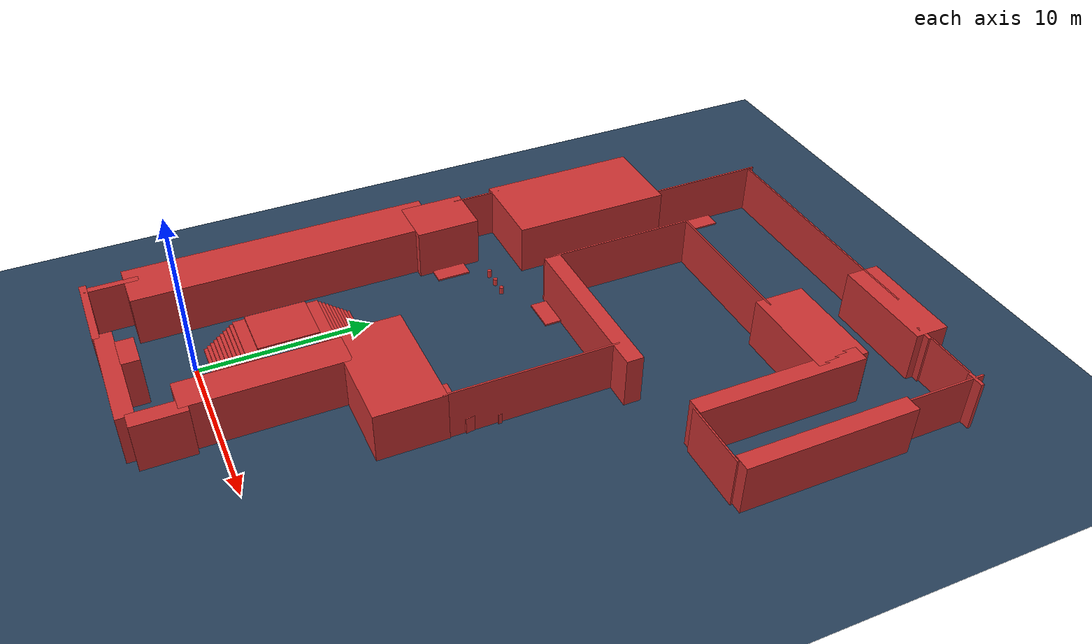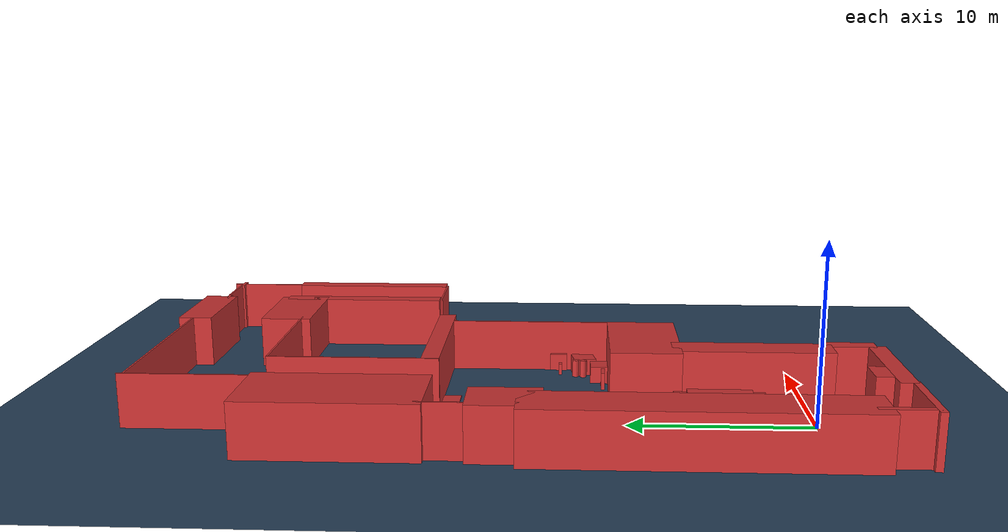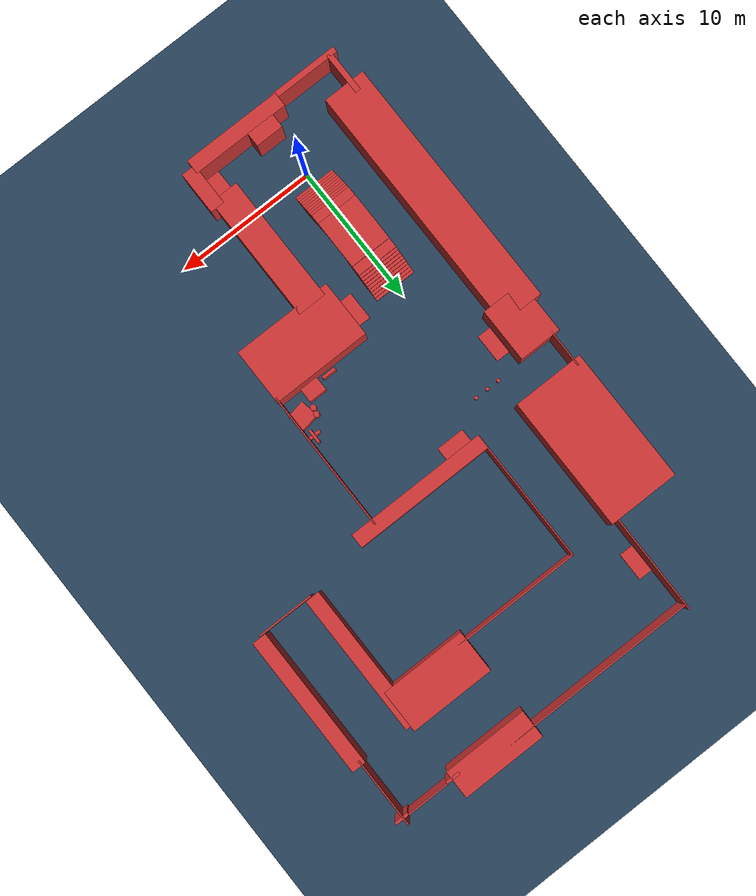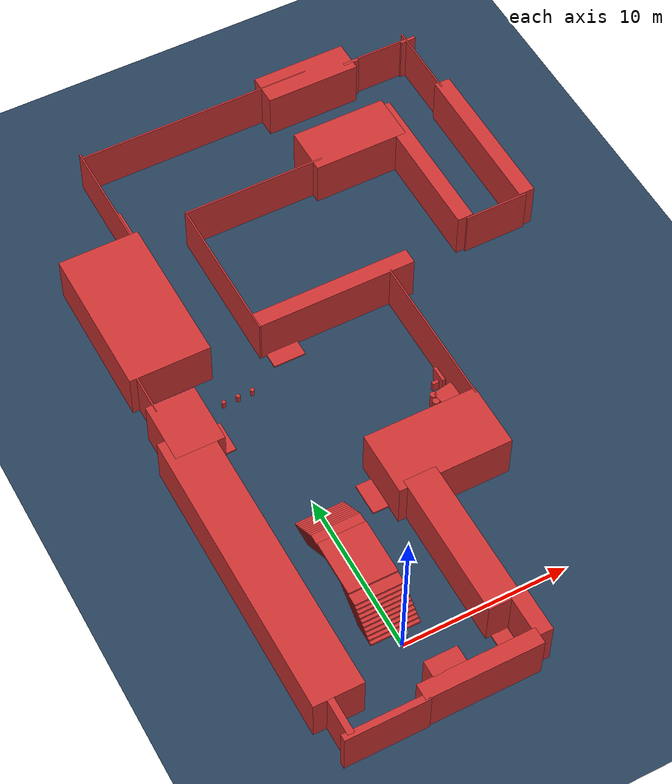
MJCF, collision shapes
<mujoco model="XXG scene">
  <include file="xxg.xml" />

  <statistic center="0 0 0.1" extent="0.8" />

  <visual>
    <headlight diffuse="0.6 0.6 0.6" ambient="0.3 0.3 0.3" specular="0 0 0" />
    <rgba haze="0.15 0.25 0.35 1" />
    <global azimuth="-130" elevation="-20" />
    <map znear="0.01" zfar="100"/>
  </visual>

  <asset>
    <texture type="skybox" builtin="gradient" rgb1="0.3 0.5 0.7" rgb2="0 0 0" width="512" height="3072" />
    <texture type="2d" name="groundplane" builtin="checker" mark="edge" rgb1="0.2 0.3 0.4" rgb2="0.1 0.2 0.3" markrgb="0.8 0.8 0.8" width="300" height="300" />
    <material name="groundplane" texture="groundplane" texuniform="true" texrepeat="5 5" reflectance="0.2" />
    <material name="platform" rgba="0.75294 0.75294 0.75294 1" specular="0.3" shininess="0.5" />
  </asset>
  <worldbody>
    <light pos="0 0 1.5" dir="0 0 -1" directional="true" />
    <geom name="floor" size="0 0 0.01" type="plane" material="groundplane" />
    <geom name="box_OBS1" pos="0.0 1.5 0.05" type="box" size="1.5 0.75 0.075" quat="1.0 0.0 0.0 0.0"  rgba="0.8 0.2 0.2 1"/>
    <geom name="box_OBS2" pos="0.0 1.7 0.2" type="box" size="1.5 0.75 0.075" quat="1.0 0.0 0.0 0.0"  rgba="0.8 0.2 0.2 1"/>
    <geom name="box_OBS3" pos="0.0 1.9 0.35" type="box" size="1.5 0.75 0.075" quat="1.0 0.0 0.0 0.0"  rgba="0.8 0.2 0.2 1"/>
    <geom name="box_OBS4" pos="0.0 2.1 0.5" type="box" size="1.5 0.75 0.075" quat="1.0 0.0 0.0 0.0"  rgba="0.8 0.2 0.2 1"/>
    <geom name="box_OBS5" pos="0.0 2.3 0.65" type="box" size="1.5 0.75 0.075" quat="1.0 0.0 0.0 0.0"  rgba="0.8 0.2 0.2 1"/>
    <geom name="box_OBS6" pos="0.0 2.5 0.8" type="box" size="1.5 0.75 0.075" quat="1.0 0.0 0.0 0.0"  rgba="0.8 0.2 0.2 1"/>
    <geom name="box_OBS7" pos="0.0 2.7 0.95" type="box" size="1.5 0.75 0.075" quat="1.0 0.0 0.0 0.0"  rgba="0.8 0.2 0.2 1"/>
    <geom name="box_OBS8" pos="0.0 2.9 1.1" type="box" size="1.5 0.75 0.075" quat="1.0 0.0 0.0 0.0"  rgba="0.8 0.2 0.2 1"/>
    <geom name="box_OBS9" pos="0.0 3.1 1.25" type="box" size="1.5 0.75 0.075" quat="1.0 0.0 0.0 0.0"  rgba="0.8 0.2 0.2 1"/>
    <geom name="box_OBS10" pos="0.0 3.3 1.4" type="box" size="1.5 0.75 0.075" quat="1.0 0.0 0.0 0.0"  rgba="0.8 0.2 0.2 1"/>
    <geom name="box2_OBS1" pos="0.0 8.5 0.05" type="box" size="1.5 0.75 0.075" quat="1.0 0.0 0.0 0.0"  rgba="0.8 0.2 0.2 1"/>
    <geom name="box2_OBS2" pos="0.0 8.3 0.2" type="box" size="1.5 0.75 0.075" quat="1.0 0.0 0.0 0.0"  rgba="0.8 0.2 0.2 1"/>
    <geom name="box2_OBS3" pos="0.0 8.1 0.35" type="box" size="1.5 0.75 0.075" quat="1.0 0.0 0.0 0.0"  rgba="0.8 0.2 0.2 1"/>
    <geom name="box2_OBS4" pos="0.0 7.9 0.5" type="box" size="1.5 0.75 0.075" quat="1.0 0.0 0.0 0.0"  rgba="0.8 0.2 0.2 1"/>
    <geom name="box2_OBS5" pos="0.0 7.7 0.65" type="box" size="1.5 0.75 0.075" quat="1.0 0.0 0.0 0.0"  rgba="0.8 0.2 0.2 1"/>
    <geom name="box2_OBS6" pos="0.0 7.5 0.8" type="box" size="1.5 0.75 0.075" quat="1.0 0.0 0.0 0.0"  rgba="0.8 0.2 0.2 1"/>
    <geom name="box2_OBS7" pos="0.0 7.3 0.95" type="box" size="1.5 0.75 0.075" quat="1.0 0.0 0.0 0.0"  rgba="0.8 0.2 0.2 1"/>
    <geom name="box2_OBS8" pos="0.0 7.1 1.1" type="box" size="1.5 0.75 0.075" quat="1.0 0.0 0.0 0.0"  rgba="0.8 0.2 0.2 1"/>
    <geom name="box2_OBS9" pos="0.0 6.9 1.25" type="box" size="1.5 0.75 0.075" quat="1.0 0.0 0.0 0.0" rgba="0.8 0.2 0.2 1" />
    <geom name="box2_OBS10" pos="0.0 6.7 1.4" type="box" size="1.5 0.75 0.075" quat="1.0 0.0 0.0 0.0"  rgba="0.8 0.2 0.2 1"/>
    <geom name="box2_OBS11" pos="0.0 5.0 1.55" type="box" size="1.5 1.75 0.075" quat="1.0 0.0 0.0 0.0"  rgba="0.8 0.2 0.2 1"/>
    <geom name="Box0" type="box" size="2.5 0.2 1.5" pos="-3.6 -4.58 1.5" euler="0.0 0.0 0.0" rgba="0.8 0.2 0.2 1"/>
    <geom name="Box1" type="box" size="3.5 0.5 1.5" pos="2.09 -4.21 1.5" euler="0.0 0.0 0.0" rgba="0.8 0.2 0.2 1"/>
    <geom name="Box2" type="box" size="1.5 0.5 1.5" pos="5.89 -2.71 1.5" euler="0.0 0.0 -1.570796" rgba="0.8 0.2 0.2 1"/>
    <geom name="Box3" type="box" size="4.5 1.0 1.5" pos="5.02 2.79 1.5" euler="0.0 0.0 -1.570796" rgba="0.8 0.2 0.2 1"/>
    <geom name="Box4" type="box" size="2.0 3.5 1.5" pos="7.02 8.79 1.5" euler="0.0 0.0 -1.570796" rgba="0.8 0.2 0.2 1"/>
    <geom name="Box5" type="box" size="5.0 0.05 1.5" pos="10.41 15.49 1.5" euler="0.0 0.0 -1.570796" rgba="0.8 0.2 0.2 1"/>
    <geom name="Box6" type="box" size="5.0 0.5 1.5" pos="6.96 20.6 1.5" euler="0.0 0.0 -3.141593" rgba="0.8 0.2 0.2 1"/>
    <geom name="Box7" type="box" size="1.5 0.2 1.5" pos="-5.6 -3.08 1.5" euler="0.0 0.0 1.570796" rgba="0.8 0.2 0.2 1"/>
    <geom name="Box8" type="box" size="9.0 1.5 1.5" pos="-5.1 6.61 1.5" euler="0.0 0.0 1.570796" rgba="0.8 0.2 0.2 1"/>
    <geom name="Box9" type="box" size="1.9 1.5 1.5" pos="-4.6 16.19 1.5" euler="0.0 0.0 1.570796" rgba="0.8 0.2 0.2 1"/>
    <geom name="Box10" type="box" size="4.75 2.5 1.5" pos="-3.6 24.85 1.5" euler="0.0 0.0 1.570796" rgba="0.8 0.2 0.2 1"/>
    <geom name="Box11" type="box" size="3.5 0.05 1.5" pos="-1.58 33.09 1.5" euler="0.0 0.0 1.570796" rgba="0.8 0.2 0.2 1"/>
    <geom name="Box12" type="box" size="4.75 0.05 1.5" pos="1.99 24.85 1.5" euler="0.0 0.0 1.570796" rgba="0.8 0.2 0.2 1"/>
    <geom name="Box13" type="box" size="7.5 0.05 1.5" pos="5.91 36.24 1.5" euler="0.0 0.0 3.141593" rgba="0.8 0.2 0.2 1"/>
    <geom name="Box14" type="box" size="3.0 1.0 1.5" pos="13.37 36.1 1.5" euler="0.0 0.0 3.141593" rgba="0.8 0.2 0.2 1"/>
    <geom name="Box15" type="box" size="3.0 1.5 1.5" pos="13.37 30.46 1.5" euler="0.0 0.0 3.141593" rgba="0.8 0.2 0.2 1"/>
    <geom name="Box16" type="box" size="4.5 0.05 1.5" pos="6.48 29.54 1.5" euler="0.0 0.0 3.141593" rgba="0.8 0.2 0.2 1"/>
    <geom name="Box17" type="box" size="1.5 0.05 1.5" pos="18.26 35.71 1.5" euler="0.0 0.0 3.141593" rgba="0.8 0.2 0.2 1"/>
    <geom name="Box18" type="box" size="0.5 0.1 1.5" pos="16.26 35.63 1.5" euler="0.0 0.0 3.141593" rgba="0.8 0.2 0.2 1"/>
    <geom name="Box19" type="box" size="0.5 0.1 1.5" pos="20.26 35.63 1.5" euler="0.0 0.0 3.141593" rgba="0.8 0.2 0.2 1"/>
    <geom name="Box20" type="box" size="2.5 0.05 1.5" pos="20.16 33.71 1.5" euler="0.0 0.0 -1.570796" rgba="0.8 0.2 0.2 1"/>
    <geom name="Box21" type="box" size="5.0 0.5 1.5" pos="20.38 26.58 1.5" euler="0.0 0.0 -1.570796" rgba="0.8 0.2 0.2 1"/>
    <geom name="Box22" type="box" size="5.0 0.5 1.5" pos="16.22 26.58 1.5" euler="0.0 0.0 -1.570796" rgba="0.8 0.2 0.2 1"/>
    <geom name="Box23" type="box" size="2.0 0.05 1.5" pos="18.26 21.48 1.5" euler="0.0 0.0 -3.141593" rgba="0.8 0.2 0.2 1"/>
    <geom name="Box24" type="box" size="1.0 0.5 1.5" pos="0.55 -3.24 1.5" euler="0.0 0.0 0.0" rgba="0.8 0.2 0.2 1"/>
    <geom name="Box25" type="box" size="1.0 0.5 0.05" pos="4.83 -2.74 0.09" euler="0.0 0.0 -1.570796" rgba="0.8 0.2 0.2 1"/>
    <geom name="Box26" type="box" size="1.0 0.5 0.05" pos="-2.63 16.08 0.1" euler="0.0 0.0 -1.570796" rgba="0.8 0.2 0.2 1"/>
    <geom name="Box27" type="box" size="1.0 0.5 0.05" pos="3.35 19.62 0.1" euler="0.0 0.0 0.0" rgba="0.8 0.2 0.2 1"/>
    <geom name="Box28" type="box" size="1.0 0.5 0.05" pos="-1.05 32.59 0.1" euler="0.0 0.0 -1.570796" rgba="0.8 0.2 0.2 1"/>
    <geom name="Box29" type="box" size="0.1 0.5 0.5" pos="6.82 11.09 0.5" euler="0.0 0.0 -1.570796" rgba="0.8 0.2 0.2 1"/>
    <geom name="Box30" type="box" size="0.5 0.65 0.5" pos="8.24 11.3 0.5" euler="0.0 0.0 -1.570796" rgba="0.8 0.2 0.2 1"/>
    <geom name="Box31" type="box" size="0.65 0.65 0.5" pos="9.8 12.2 0.5" euler="0.0 0.0 1.745329" rgba="0.8 0.2 0.2 1"/>
    <geom name="Box32" type="box" size="0.1 0.5 0.5" pos="10.02 13.59 0.1" euler="-1.570796 1.570796 3.141593" rgba="0.8 0.2 0.2 1"/>
    <geom name="Box33" type="box" size="0.1 0.5 0.5" pos="10.02 13.69 0.6" euler="-1.570796 0.0 3.141593" rgba="0.8 0.2 0.2 1"/>
    <geom name="Cylinder34"  type="cylinder" size="0.2 0.5" pos="8.95 12.2 0.5" rgba="0.8 0.2 0.2 1"/>
    <geom name="Cylinder35"  type="cylinder" size="0.2 0.5" pos="9.05 12.65 0.5" rgba="0.8 0.2 0.2 1"/>
    <geom name="Box36" type="box" size="1.5 0.05 1.5" pos="-5.63 19.05 1.5" euler="0.0 0.0 1.570796" rgba="0.8 0.2 0.2 1"/>
    <geom name="Cylinder37"  type="cylinder" size="0.125 0.22" pos="0.41 18.09 0.22" rgba="0.8 0.2 0.2 1"/>
    <geom name="Cylinder38"  type="cylinder" size="0.125 0.22" pos="-0.49 18.09 0.22" rgba="0.8 0.2 0.2 1"/>
    <geom name="Cylinder39"  type="cylinder" size="0.125 0.22" pos="-1.39 18.09 0.22" rgba="0.8 0.2 0.2 1"/>
    <geom name="Box40" type="box" size="1.0 0.5 0.05" pos="3.04 8.82 0.1" euler="0.0 0.0 -1.570796" rgba="0.8 0.2 0.2 1"/>
  </worldbody>
</mujoco>

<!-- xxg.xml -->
<mujoco model="DOG">
  <compiler angle="radian" meshdir="assets/"/>

  <asset>
    <mesh name="BASE_LINK" file="BASE_LINK.STL"/>
    <mesh name="FBL_ABAD_LINK" file="FBL_ABAD_LINK.STL"/>
    <mesh name="FBL_HIP_LINK" file="FBL_HIP_LINK.STL"/>
    <mesh name="FBL_KNEE_LINK" file="FBL_KNEE_LINK.STL"/>
    <mesh name="FBL_FOOT_LINK" file="FBL_FOOT_LINK.STL"/>
    <mesh name="FAR_ABAD_LINK" file="FAR_ABAD_LINK.STL"/>
    <mesh name="FAR_HIP_LINK" file="FAR_HIP_LINK.STL"/>
    <mesh name="FAR_KNEE_LINK" file="FAR_KNEE_LINK.STL"/>
    <mesh name="FAR_FOOT_LINK" file="FAR_FOOT_LINK.STL"/>
    <mesh name="RAR_ABAD_LINK" file="RAR_ABAD_LINK.STL"/>
    <mesh name="RAR_HIP_LINK" file="RAR_HIP_LINK.STL"/>
    <mesh name="RAR_KNEE_LINK" file="RAR_KNEE_LINK.STL"/>
    <mesh name="RAR_FOOT_LINK" file="RAR_FOOT_LINK.STL"/>
    <mesh name="RBL_ABAD_LINK" file="RBL_ABAD_LINK.STL"/>
    <mesh name="RBL_HIP_LINK" file="RBL_HIP_LINK.STL"/>
    <mesh name="RBL_KNEE_LINK" file="RBL_KNEE_LINK.STL"/>
    <mesh name="RBL_FOOT_LINK" file="RBL_FOOT_LINK.STL"/>
    <mesh name="HEAD1_LINK" file="HEAD1_LINK.STL"/>
    <mesh name="HEAD2_LINK" file="HEAD2_LINK.STL"/>
  </asset>

  <worldbody>
    <body name="BASE_LINK" pos="0 0 1.0">
      <inertial pos="1.8341473e-02 -1.9475667e-04 1.6646741e-02" quat="-0 0 0 1" mass="5.6608325" diaginertia="0.039340224 8.8059075e-02 7.6312096e-02"/>
      <freejoint />
      <site name="imu" pos="0.0 0 0.0" />
    <!-- add livox_imu -->
    <site name="livox_imu" pos="0.18 0.0 0.3" quat="1.0 0.0 0.0 0.0"/>
    <!-- add camera imu -->
    <site name="camera_imu" pos="0.18 0.0 0.3" quat="1.0 0.0 0.0 0.0"/>

    <geom type="mesh" contype="0" conaffinity="0" group="1" density="0" rgba="0.75294 0.75294 0.75294 1.0" mesh="BASE_LINK"/>
    <geom size="0.2 0.075 0.055" type="box" rgba="0.75294 0.75294 0.75294 0.0"/>
    <geom pos="0.1775 0 0.1164" quat="0.965249 0 0.26133 0" type="mesh" contype="0" conaffinity="0" group="1" density="0" rgba="0.75294 0.75294 0.75294 1.0" mesh="HEAD1_LINK"/>
    <geom pos="0.1775 0 0.1164" quat="0.965249 0 0.26133 0" type="mesh" contype="0" conaffinity="0" group="1" density="0" rgba="0.75294 0.75294 0.75294 1.0" mesh="HEAD2_LINK"/>
    <geom size="0.05 0.1 0.06" pos="0.204181 0 0.181884" quat="0.965249 0 0.26133 0" type="box" rgba="0.75294 0.75294 0.75294 0.0"/>
    <geom size="0.035 0.05 0.04" pos="0.27432 0 0.123528" quat="0.965249 0 0.26133 0" type="box" rgba="0.75294 0.75294 0.75294 0.0"/>
    <body name="FBL_ABAD_LINK" pos="0.1305 0.0377 0">
      <inertial pos="-0.0258732 0.00474653 0" quat="0.446156 0.446156 0.548585 0.548585" mass="0.29007" diaginertia="0.000234429 0.000228281 4.61129e-05"/>
      <joint name="FBL_ABAD_JOINT" pos="0 0 0" axis="1 0 0" range="-0.4887 0.4887" actuatorfrcrange="-20 20"/>
      <geom type="mesh" contype="0" conaffinity="0" group="1" density="0" rgba="0.75294 0.75294 0.75294 1.0" mesh="FBL_ABAD_LINK"/>
      <body name="FBL_HIP_LINK">
        <inertial pos="0 0.0475203 -0.0615104" quat="0.992663 0.120643 7.95638e-06 -0.00808508" mass="0.698577" diaginertia="0.00315469 0.00310141 0.000383698"/>
        <joint name="FBL_HIP_JOINT" pos="0 0 0" axis="0 1 0" range="-2.967 2.967" actuatorfrcrange="-20 20"/>
        <geom type="mesh" contype="0" conaffinity="0" group="1" density="0" rgba="0.75294 0.75294 0.75294 1.0" mesh="FBL_HIP_LINK"/>
        <geom size="0.025 0.015 0.03" pos="-0.01 0.085 -0.06" type="box" rgba="0.75294 0.75294 0.75294 1.0"/>
        <body name="FBL_KNEE_LINK" pos="0 0.08786 -0.1307">
          <inertial pos="0.00368489 0.0063771 -0.0635258" quat="0.608469 0.0177668 -0.0332576 0.792681" mass="0.288584" diaginertia="0.00161384 0.00159203 5.37708e-05"/>
          <joint name="FBL_KNEE_JOINT" pos="0 0 0" axis="0 1 0" range="-2.723 2.702" actuatorfrcrange="-20 20"/>
          <geom type="mesh" contype="0" conaffinity="0" group="1" density="0" rgba="0.49804 0.49804 0.49804 1.0" mesh="FBL_KNEE_LINK"/>
          <geom size="0.015 0.01 0.045" pos="0 0 -0.05" quat="0.994493 0 0.104807 0" type="box" rgba="0.49804 0.49804 0.49804 1.0"/>
          <geom pos="0 0 -0.1425" type="mesh" contype="0" conaffinity="0" group="1" density="0" rgba="0.75294 0.75294 0.75294 1.0" mesh="FBL_FOOT_LINK"/>
          <geom size="0.03" pos="0 0 -0.1425" quat="0.707388 0.706825 0 0" rgba="0.75294 0.75294 0.75294 1.0"/>
        </body>
      </body>
    </body>
    <body name="FAR_ABAD_LINK" pos="0.1305 -0.0377 0">
      <inertial pos="-0.0258732 -0.00474653 0" quat="0.548585 0.548585 0.446156 0.446156" mass="0.29007" diaginertia="0.000234429 0.000228281 4.61129e-05"/>
      <joint name="FAR_ABAD_JOINT" pos="0 0 0" axis="1 0 0" range="-0.4887 0.4887" actuatorfrcrange="-20 20"/>
      <geom type="mesh" contype="0" conaffinity="0" group="1" density="0" rgba="0.75294 0.75294 0.75294 1.0" mesh="FAR_ABAD_LINK"/>
      <body name="FAR_HIP_LINK">
        <inertial pos="0 -0.0475203 -0.0615104" quat="0.992663 -0.120643 7.95638e-06 0.00808508" mass="0.698577" diaginertia="0.00315469 0.00310141 0.000383698"/>
        <joint name="FAR_HIP_JOINT" pos="0 0 0" axis="0 1 0" range="-2.967 2.967" actuatorfrcrange="-20 20"/>
        <geom type="mesh" contype="0" conaffinity="0" group="1" density="0" rgba="0.75294 0.75294 0.75294 1.0" mesh="FAR_HIP_LINK"/>
        <geom size="0.025 0.015 0.03" pos="-0.01 -0.085 -0.06" type="box" rgba="0.75294 0.75294 0.75294 1.0"/>
        <body name="FAR_KNEE_LINK" pos="0 -0.08786 -0.1307">
          <inertial pos="0.00368489 -0.0063771 -0.0635258" quat="0.792681 -0.0332576 0.0177668 0.608469" mass="0.288584" diaginertia="0.00161384 0.00159203 5.37708e-05"/>
          <joint name="FAR_KNEE_JOINT" pos="0 0 0" axis="0 1 0" range="-2.723 2.702" actuatorfrcrange="-20 20"/>
          <geom type="mesh" contype="0" conaffinity="0" group="1" density="0" rgba="0.49804 0.49804 0.49804 1.0" mesh="FAR_KNEE_LINK"/>
          <geom size="0.015 0.01 0.045" pos="0 0 -0.05" quat="0.994493 0 0.104807 0" type="box" rgba="0.49804 0.49804 0.49804 1.0"/>
          <geom pos="0 0 -0.1425" type="mesh" contype="0" conaffinity="0" group="1" density="0" rgba="0.75294 0.75294 0.75294 1.0" mesh="FAR_FOOT_LINK"/>
          <geom size="0.03" pos="0 0 -0.1425" quat="0.707388 0.706825 0 0" rgba="0.75294 0.75294 0.75294 1.0"/>
        </body>
      </body>
    </body>
    <body name="RAR_ABAD_LINK" pos="-0.1305 -0.0377 0">
      <inertial pos="0.0258732 -0.00474653 0" quat="0.446156 0.446156 0.548585 0.548585" mass="0.29007" diaginertia="0.000234429 0.000228281 4.61129e-05"/>
      <joint name="RAR_ABAD_JOINT" pos="0 0 0" axis="1 0 0" range="-0.4887 0.4887" actuatorfrcrange="-20 20"/>
      <geom type="mesh" contype="0" conaffinity="0" group="1" density="0" rgba="0.75294 0.75294 0.75294 1.0" mesh="RAR_ABAD_LINK"/>
      <body name="RAR_HIP_LINK">
        <inertial pos="0 -0.0475203 -0.0615104" quat="0.992663 -0.120643 7.95638e-06 0.00808508" mass="0.698577" diaginertia="0.00315469 0.00310141 0.000383698"/>
        <joint name="RAR_HIP_JOINT" pos="0 0 0" axis="0 1 0" range="-2.967 2.967" actuatorfrcrange="-20 20"/>
        <geom type="mesh" contype="0" conaffinity="0" group="1" density="0" rgba="0.75294 0.75294 0.75294 1.0" mesh="RAR_HIP_LINK"/>
        <geom size="0.025 0.015 0.03" pos="0 -0.085 -0.06" type="box" rgba="0.75294 0.75294 0.75294 1.0"/>
        <body name="RAR_KNEE_LINK" pos="0 -0.08786 -0.1307">
          <inertial pos="0.00368489 -0.0063771 -0.0634925" quat="0.792566 -0.0333078 0.0177921 0.608615" mass="0.288584" diaginertia="0.0016124 0.00159058 5.37526e-05"/>
          <joint name="RAR_KNEE_JOINT" pos="0 0 0" axis="0 1 0" range="-2.723 2.702" actuatorfrcrange="-20 20"/>
          <geom type="mesh" contype="0" conaffinity="0" group="1" density="0" rgba="0.49804 0.49804 0.49804 1.0" mesh="RAR_KNEE_LINK"/>
          <geom size="0.015 0.01 0.045" pos="-0.01 0 -0.04" quat="0.930508 0 0.366273 0" type="box" rgba="0.49804 0.49804 0.49804 1.0"/>
          <geom pos="0 0 -0.1357" quat="1 0 0 0" type="mesh" contype="0" conaffinity="0" group="1" density="0" rgba="0.75294 0.75294 0.75294 1.0" mesh="RAR_FOOT_LINK"/>
          <geom size="0.03" pos="0 0 -0.1357" quat="0.707388 0.706825 0 0" rgba="0.75294 0.75294 0.75294 1.0"/>
        </body>
      </body>
    </body>
    <body name="RBL_ABAD_LINK" pos="-0.1305 0.0377 0">
      <inertial pos="0.0258732 0.00474653 0" quat="0.548585 0.548585 0.446156 0.446156" mass="0.29007" diaginertia="0.000234429 0.000228281 4.61129e-05"/>
      <joint name="RBL_ABAD_JOINT" pos="0 0 0" axis="1 0 0" range="-0.4887 0.4887" actuatorfrcrange="-20 20"/>
      <geom type="mesh" contype="0" conaffinity="0" group="1" density="0" rgba="0.75294 0.75294 0.75294 1.0" mesh="RBL_ABAD_LINK"/>
      <body name="RBL_HIP_LINK">
        <inertial pos="0 0.0475203 -0.0615104" quat="0.992663 0.120643 7.95638e-06 -0.00808508" mass="0.698577" diaginertia="0.00315469 0.00310141 0.000383698"/>
        <joint name="RBL_HIP_JOINT" pos="0 0 0" axis="0 1 0" range="-2.967 2.967" actuatorfrcrange="-20 20"/>
        <geom type="mesh" contype="0" conaffinity="0" group="1" density="0" rgba="0.75294 0.75294 0.75294 1.0" mesh="RBL_HIP_LINK"/>
        <geom size="0.025 0.015 0.03" pos="0 0.085 -0.06" type="box" rgba="0.75294 0.75294 0.75294 1.0"/>
        <body name="RBL_KNEE_LINK" pos="0 0.08786 -0.1307">
          <inertial pos="0.00368489 0.0063771 -0.0634925" quat="0.608615 0.0177921 -0.0333078 0.792566" mass="0.288584" diaginertia="0.0016124 0.00159058 5.37526e-05"/>
          <joint name="RBL_KNEE_JOINT" pos="0 0 0" axis="0 1 0" range="-2.723 2.702" actuatorfrcrange="-20 20"/>
          <geom type="mesh" contype="0" conaffinity="0" group="1" density="0" rgba="0.49804 0.49804 0.49804 1.0" mesh="RBL_KNEE_LINK"/>
          <geom size="0.015 0.01 0.045" pos="-0.01 0 -0.04" quat="0.930508 0 0.366273 0" type="box" rgba="0.49804 0.49804 0.49804 1.0"/>
          <geom pos="0 0 -0.1357" quat="1 0 0 0" type="mesh" contype="0" conaffinity="0" group="1" density="0" rgba="0.75294 0.75294 0.75294 1.0" mesh="RBL_FOOT_LINK"/>
          <geom size="0.03" pos="0 0 -0.1357" quat="0.707388 0.706825 0 0" rgba="0.75294 0.75294 0.75294 1.0"/>
        </body>
      </body>
    </body>
  </body>
  </worldbody>
    <actuator>
        <motor name="FR_ABAD_LINK" joint="FAR_ABAD_JOINT" />
        <motor name="FR_HIP_LINK" joint="FAR_HIP_JOINT" />
        <motor name="FR_KNEE_LINK" joint="FAR_KNEE_JOINT" />
        <motor name="FL_ABAD_LINK" joint="FBL_ABAD_JOINT" />
        <motor name="FL_HIP_LINK" joint="FBL_HIP_JOINT" />
        <motor name="FL_KNEE_LINK" joint="FBL_KNEE_JOINT" />
        <motor name="RR_ABAD_LINK" joint="RAR_ABAD_JOINT" />
        <motor name="RR_HIP_LINK" joint="RAR_HIP_JOINT" />
        <motor name="RR_KNEE_LINK" joint="RAR_KNEE_JOINT" />
        <motor name="RL_ABAD_LINK" joint="RBL_ABAD_JOINT" />
        <motor name="RL_HIP_LINK" joint="RBL_HIP_JOINT" />
        <motor name="RL_KNEE_LINK" joint="RBL_KNEE_JOINT" />
    </actuator>

    <sensor>
        <jointpos name="FR_hip_pos" joint="FAR_ABAD_JOINT" />
        <jointpos name="FR_thigh_pos" joint="FAR_HIP_JOINT" />
        <jointpos name="FR_calf_pos" joint="FAR_KNEE_JOINT" />
        <jointpos name="FL_hip_pos" joint="FBL_ABAD_JOINT" />
        <jointpos name="FL_thigh_pos" joint="FBL_HIP_JOINT" />
        <jointpos name="FL_calf_pos" joint="FBL_KNEE_JOINT" />
        <jointpos name="RR_hip_pos" joint="RAR_ABAD_JOINT" />
        <jointpos name="RR_thigh_pos" joint="RAR_HIP_JOINT" />
        <jointpos name="RR_calf_pos" joint="RAR_KNEE_JOINT" />
        <jointpos name="RL_hip_pos" joint="RBL_ABAD_JOINT" />
        <jointpos name="RL_thigh_pos" joint="RBL_HIP_JOINT" />
        <jointpos name="RL_calf_pos" joint="RBL_KNEE_JOINT" />

        <jointvel name="FR_hip_vel" joint="FAR_ABAD_JOINT" />
        <jointvel name="FR_thigh_vel" joint="FAR_HIP_JOINT" />
        <jointvel name="FR_calf_vel" joint="FAR_KNEE_JOINT" />
        <jointvel name="FL_hip_vel" joint="FBL_ABAD_JOINT" />
        <jointvel name="FL_thigh_vel" joint="FBL_HIP_JOINT" />
        <jointvel name="FL_calf_vel" joint="FBL_KNEE_JOINT" />
        <jointvel name="RR_hip_vel" joint="RAR_ABAD_JOINT" />
        <jointvel name="RR_thigh_vel" joint="RAR_HIP_JOINT" />
        <jointvel name="RR_calf_vel" joint="RAR_KNEE_JOINT" />
        <jointvel name="RL_hip_vel" joint="RBL_ABAD_JOINT" />
        <jointvel name="RL_thigh_vel" joint="RBL_HIP_JOINT" />
        <jointvel name="RL_calf_vel" joint="RBL_KNEE_JOINT" />

        <jointactuatorfrc name="FR_hip_torque" joint="FAR_ABAD_JOINT" noise="0.01" />
        <jointactuatorfrc name="FR_thigh_torque" joint="FAR_HIP_JOINT" noise="0.01" />
        <jointactuatorfrc name="FR_calf_torque" joint="FAR_KNEE_JOINT" noise="0.01" />
        <jointactuatorfrc name="FL_hip_torque" joint="FBL_ABAD_JOINT" noise="0.01" />
        <jointactuatorfrc name="FL_thigh_torque" joint="FBL_HIP_JOINT" noise="0.01" />
        <jointactuatorfrc name="FL_calf_torque" joint="FBL_KNEE_JOINT" noise="0.01" />
        <jointactuatorfrc name="RR_hip_torque" joint="RAR_ABAD_JOINT" noise="0.01" />
        <jointactuatorfrc name="RR_thigh_torque" joint="RAR_HIP_JOINT" noise="0.01" />
        <jointactuatorfrc name="RR_calf_torque" joint="RAR_KNEE_JOINT" noise="0.01" />
        <jointactuatorfrc name="RL_hip_torque" joint="RBL_ABAD_JOINT" noise="0.01" />
        <jointactuatorfrc name="RL_thigh_torque" joint="RBL_HIP_JOINT" noise="0.01" />
        <jointactuatorfrc name="RL_calf_torque" joint="RBL_KNEE_JOINT" noise="0.01" />

        <framequat name="imu_quat" objtype="site" objname="imu" />
        <gyro name="imu_gyro" site="imu" />
        <accelerometer name="imu_acc" site="imu" />

        <framepos name="frame_pos" objtype="site" objname="imu" />
        <framelinvel name="frame_vel" objtype="site" objname="imu" />

        <!-- add livox_imu -->
        <framequat name="livox_imu_quat" objtype="site" objname="livox_imu" />
        <gyro name="livox_imu_gyro" site="livox_imu" />
        <accelerometer name="livox_imu_acc" site="livox_imu" />

        <framepos name="livox_imu_frame_pos" objtype="site" objname="livox_imu" />
        <framelinvel name="livox_imu_frame_vel" objtype="site" objname="livox_imu" />

        <!-- add camera imu -->
        <framequat name="camera_imu_quat" objtype="site" objname="camera_imu" />
        <gyro name="camera_imu_gyro" site="camera_imu" />
        <accelerometer name="camera_imu_acc" site="camera_imu" />

        <framepos name="camera_imu_frame_pos" objtype="site" objname="camera_imu" />
        <framelinvel name="camera_imu_frame_vel" objtype="site" objname="camera_imu" />
    </sensor>

</mujoco>
